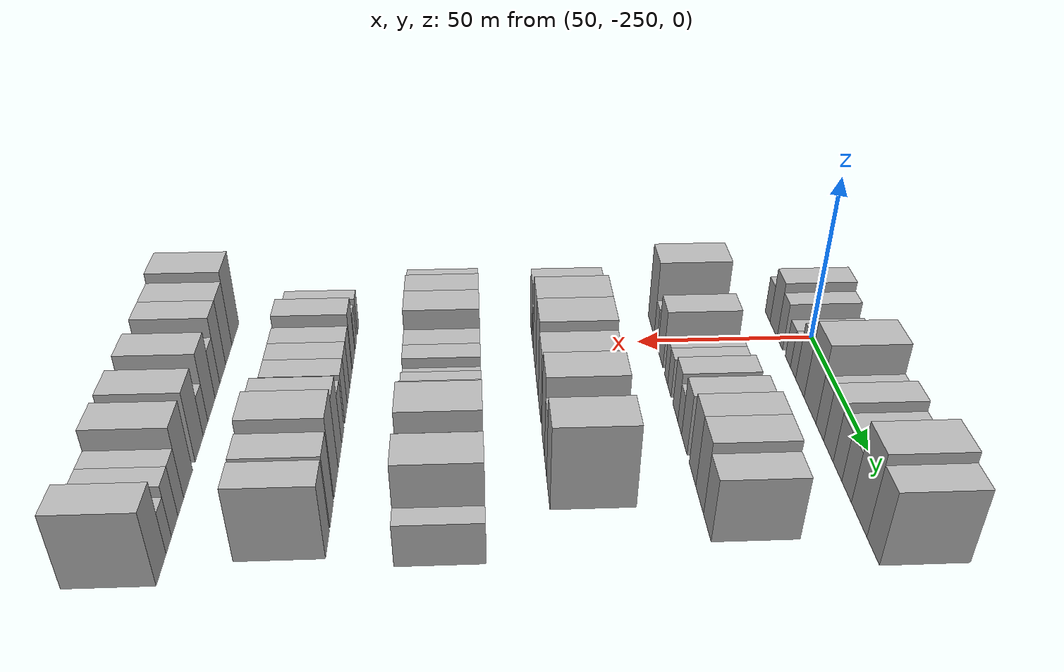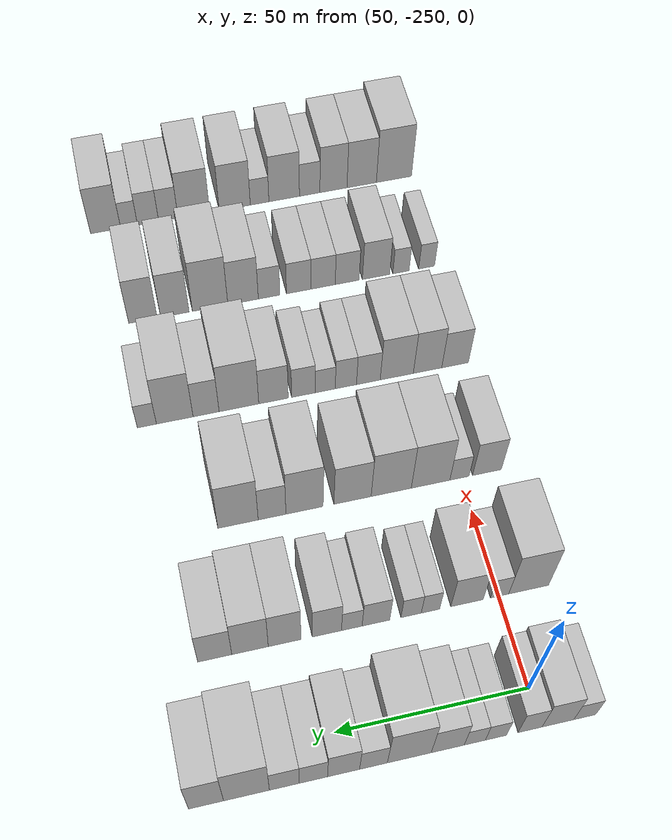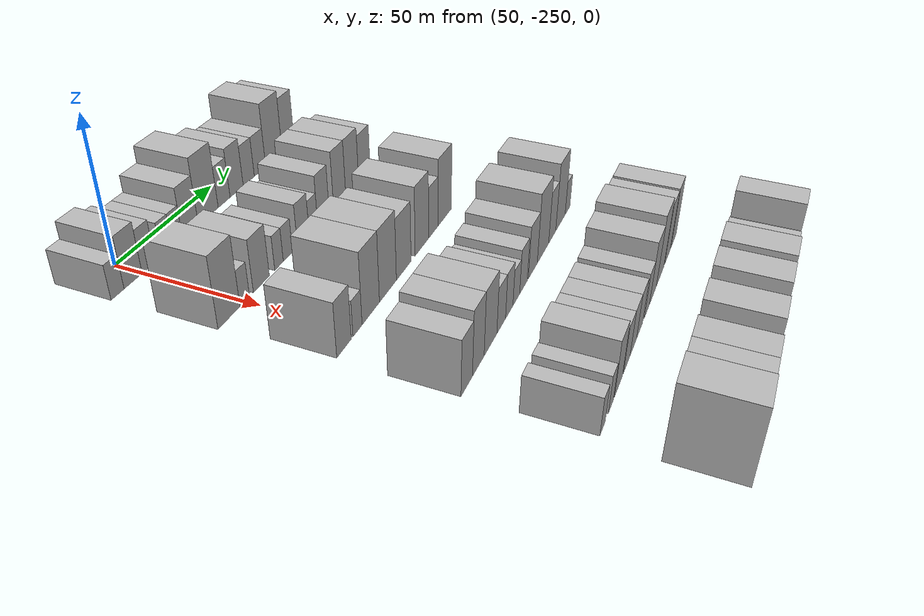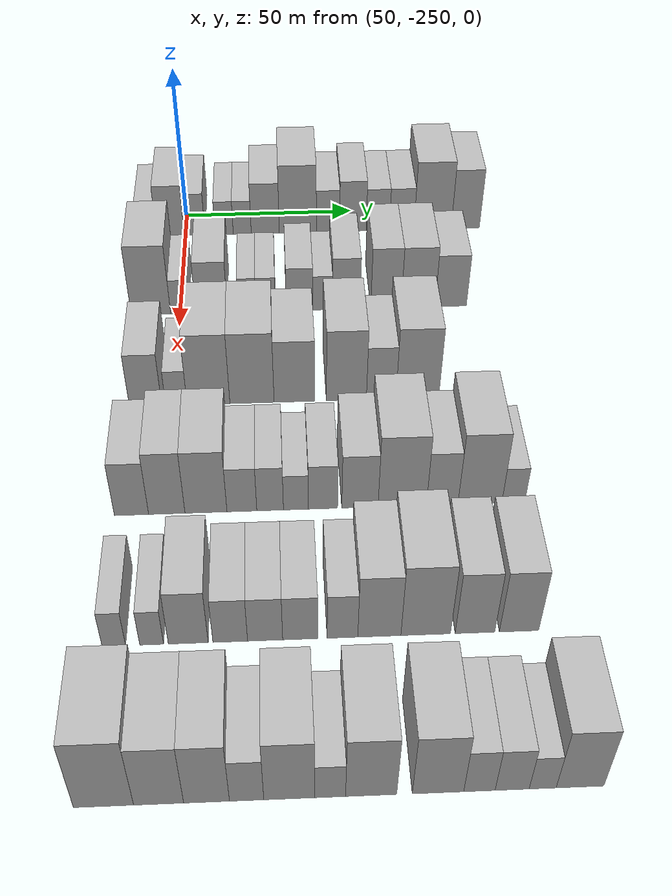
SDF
<sdf version="1.6">
 <world name="default">
  <model name="building_30">
   <static>1</static>
   <pose>50.0000 -261.3964 0 0.000000 0.000000 0.000000</pose>
   <link name="link">
    <pose>0 0 6.00 0 0 0</pose>
    <collision name="collision"><geometry><box><size>20.0000 5.7237 12.0000</size></box></geometry></collision>
    <visual name="visual">
     <cast_shadows>0</cast_shadows>
     <geometry><box><size>20.0000 5.7237 12.0000</size></box></geometry>
     <material>
      <script>
       <uri>model://HANNAS_wall/materials/scripts</uri>
       <uri>model://HANNAS_wall/materials/textures</uri>
       <name>vrc/HANNAS_wall</name>
      </script>
     </material>
    </visual>
   </link>
  </model>
  <model name="building_31">
   <static>1</static>
   <pose>50.0000 -254.4233 0 0.000000 0.000000 0.000000</pose>
   <link name="link">
    <pose>0 0 9.00 0 0 0</pose>
    <collision name="collision"><geometry><box><size>20.0000 8.2224 18.0000</size></box></geometry></collision>
    <visual name="visual">
     <cast_shadows>0</cast_shadows>
     <geometry><box><size>20.0000 8.2224 18.0000</size></box></geometry>
     <material>
      <script>
       <uri>model://HANNAS_wall/materials/scripts</uri>
       <uri>model://HANNAS_wall/materials/textures</uri>
       <name>vrc/HANNAS_wall</name>
      </script>
     </material>
    </visual>
   </link>
  </model>
  <model name="building_32">
   <static>1</static>
   <pose>50.0000 -247.2109 0 0.000000 0.000000 0.000000</pose>
   <link name="link">
    <pose>0 0 7.50 0 0 0</pose>
    <collision name="collision"><geometry><box><size>20.0000 6.2025 15.0000</size></box></geometry></collision>
    <visual name="visual">
     <cast_shadows>0</cast_shadows>
     <geometry><box><size>20.0000 6.2025 15.0000</size></box></geometry>
     <material>
      <script>
       <uri>model://HANNAS_wall/materials/scripts</uri>
       <uri>model://HANNAS_wall/materials/textures</uri>
       <name>vrc/HANNAS_wall</name>
      </script>
     </material>
    </visual>
   </link>
  </model>
  <model name="building_33">
   <static>1</static>
   <pose>50.0000 -238.4024 0 0.000000 0.000000 0.000000</pose>
   <link name="link">
    <pose>0 0 6.00 0 0 0</pose>
    <collision name="collision"><geometry><box><size>20.0000 5.4144 12.0000</size></box></geometry></collision>
    <visual name="visual">
     <cast_shadows>0</cast_shadows>
     <geometry><box><size>20.0000 5.4144 12.0000</size></box></geometry>
     <material>
      <script>
       <uri>model://HANNAS_wall/materials/scripts</uri>
       <uri>model://HANNAS_wall/materials/textures</uri>
       <name>vrc/HANNAS_wall</name>
      </script>
     </material>
    </visual>
   </link>
  </model>
  <model name="building_34">
   <static>1</static>
   <pose>50.0000 -233.0142 0 0.000000 0.000000 0.000000</pose>
   <link name="link">
    <pose>0 0 6.00 0 0 0</pose>
    <collision name="collision"><geometry><box><size>20.0000 5.3620 12.0000</size></box></geometry></collision>
    <visual name="visual">
     <cast_shadows>0</cast_shadows>
     <geometry><box><size>20.0000 5.3620 12.0000</size></box></geometry>
     <material>
      <script>
       <uri>model://HANNAS_wall/materials/scripts</uri>
       <uri>model://HANNAS_wall/materials/textures</uri>
       <name>vrc/HANNAS_wall</name>
      </script>
     </material>
    </visual>
   </link>
  </model>
  <model name="building_35">
   <static>1</static>
   <pose>50.0000 -226.1422 0 0.000000 0.000000 0.000000</pose>
   <link name="link">
    <pose>0 0 9.00 0 0 0</pose>
    <collision name="collision"><geometry><box><size>20.0000 8.3820 18.0000</size></box></geometry></collision>
    <visual name="visual">
     <cast_shadows>0</cast_shadows>
     <geometry><box><size>20.0000 8.3820 18.0000</size></box></geometry>
     <material>
      <script>
       <uri>model://HANNAS_wall/materials/scripts</uri>
       <uri>model://HANNAS_wall/materials/textures</uri>
       <name>vrc/HANNAS_wall</name>
      </script>
     </material>
    </visual>
   </link>
  </model>
  <model name="building_36">
   <static>1</static>
   <pose>50.0000 -216.4111 0 0.000000 0.000000 0.000000</pose>
   <link name="link">
    <pose>0 0 12.00 0 0 0</pose>
    <collision name="collision"><geometry><box><size>20.0000 11.0804 24.0000</size></box></geometry></collision>
    <visual name="visual">
     <cast_shadows>0</cast_shadows>
     <geometry><box><size>20.0000 11.0804 24.0000</size></box></geometry>
     <material>
      <script>
       <uri>model://HANNAS_wall/materials/scripts</uri>
       <uri>model://HANNAS_wall/materials/textures</uri>
       <name>vrc/HANNAS_wall</name>
      </script>
     </material>
    </visual>
   </link>
  </model>
  <model name="building_37">
   <static>1</static>
   <pose>50.0000 -207.3943 0 0.000000 0.000000 0.000000</pose>
   <link name="link">
    <pose>0 0 7.50 0 0 0</pose>
    <collision name="collision"><geometry><box><size>20.0000 6.9532 15.0000</size></box></geometry></collision>
    <visual name="visual">
     <cast_shadows>0</cast_shadows>
     <geometry><box><size>20.0000 6.9532 15.0000</size></box></geometry>
     <material>
      <script>
       <uri>model://HANNAS_wall/materials/scripts</uri>
       <uri>model://HANNAS_wall/materials/textures</uri>
       <name>vrc/HANNAS_wall</name>
      </script>
     </material>
    </visual>
   </link>
  </model>
  <model name="building_38">
   <static>1</static>
   <pose>50.0000 -199.9215 0 0.000000 0.000000 0.000000</pose>
   <link name="link">
    <pose>0 0 9.00 0 0 0</pose>
    <collision name="collision"><geometry><box><size>20.0000 7.9923 18.0000</size></box></geometry></collision>
    <visual name="visual">
     <cast_shadows>0</cast_shadows>
     <geometry><box><size>20.0000 7.9923 18.0000</size></box></geometry>
     <material>
      <script>
       <uri>model://HANNAS_wall/materials/scripts</uri>
       <uri>model://HANNAS_wall/materials/textures</uri>
       <name>vrc/HANNAS_wall</name>
      </script>
     </material>
    </visual>
   </link>
  </model>
  <model name="building_39">
   <static>1</static>
   <pose>50.0000 -192.4334 0 0.000000 0.000000 0.000000</pose>
   <link name="link">
    <pose>0 0 7.50 0 0 0</pose>
    <collision name="collision"><geometry><box><size>20.0000 6.9839 15.0000</size></box></geometry></collision>
    <visual name="visual">
     <cast_shadows>0</cast_shadows>
     <geometry><box><size>20.0000 6.9839 15.0000</size></box></geometry>
     <material>
      <script>
       <uri>model://HANNAS_wall/materials/scripts</uri>
       <uri>model://HANNAS_wall/materials/textures</uri>
       <name>vrc/HANNAS_wall</name>
      </script>
     </material>
    </visual>
   </link>
  </model>
  <model name="building_40">
   <static>1</static>
   <pose>50.0000 -185.2547 0 0.000000 0.000000 0.000000</pose>
   <link name="link">
    <pose>0 0 7.50 0 0 0</pose>
    <collision name="collision"><geometry><box><size>20.0000 7.3734 15.0000</size></box></geometry></collision>
    <visual name="visual">
     <cast_shadows>0</cast_shadows>
     <geometry><box><size>20.0000 7.3734 15.0000</size></box></geometry>
     <material>
      <script>
       <uri>model://HANNAS_wall/materials/scripts</uri>
       <uri>model://HANNAS_wall/materials/textures</uri>
       <name>vrc/HANNAS_wall</name>
      </script>
     </material>
    </visual>
   </link>
  </model>
  <model name="building_41">
   <static>1</static>
   <pose>50.0000 -175.9584 0 0.000000 0.000000 0.000000</pose>
   <link name="link">
    <pose>0 0 12.00 0 0 0</pose>
    <collision name="collision"><geometry><box><size>20.0000 11.2193 24.0000</size></box></geometry></collision>
    <visual name="visual">
     <cast_shadows>0</cast_shadows>
     <geometry><box><size>20.0000 11.2193 24.0000</size></box></geometry>
     <material>
      <script>
       <uri>model://HANNAS_wall/materials/scripts</uri>
       <uri>model://HANNAS_wall/materials/textures</uri>
       <name>vrc/HANNAS_wall</name>
      </script>
     </material>
    </visual>
   </link>
  </model>
  <model name="building_42">
   <static>1</static>
   <pose>50.0000 -166.0863 0 0.000000 0.000000 0.000000</pose>
   <link name="link">
    <pose>0 0 10.50 0 0 0</pose>
    <collision name="collision"><geometry><box><size>20.0000 8.5249 21.0000</size></box></geometry></collision>
    <visual name="visual">
     <cast_shadows>0</cast_shadows>
     <geometry><box><size>20.0000 8.5249 21.0000</size></box></geometry>
     <material>
      <script>
       <uri>model://HANNAS_wall/materials/scripts</uri>
       <uri>model://HANNAS_wall/materials/textures</uri>
       <name>vrc/HANNAS_wall</name>
      </script>
     </material>
    </visual>
   </link>
  </model>
  <model name="building_154">
   <static>1</static>
   <pose>85.0000 -258.0696 0 0.000000 0.000000 0.000000</pose>
   <link name="link">
    <pose>0 0 12.00 0 0 0</pose>
    <collision name="collision"><geometry><box><size>20.0000 10.8700 24.0000</size></box></geometry></collision>
    <visual name="visual">
     <cast_shadows>0</cast_shadows>
     <geometry><box><size>20.0000 10.8700 24.0000</size></box></geometry>
     <material>
      <script>
       <uri>model://HANNAS_wall/materials/scripts</uri>
       <uri>model://HANNAS_wall/materials/textures</uri>
       <name>vrc/HANNAS_wall</name>
      </script>
     </material>
    </visual>
   </link>
  </model>
  <model name="building_155">
   <static>1</static>
   <pose>85.0000 -250.1532 0 0.000000 0.000000 0.000000</pose>
   <link name="link">
    <pose>0 0 6.00 0 0 0</pose>
    <collision name="collision"><geometry><box><size>20.0000 4.9628 12.0000</size></box></geometry></collision>
    <visual name="visual">
     <cast_shadows>0</cast_shadows>
     <geometry><box><size>20.0000 4.9628 12.0000</size></box></geometry>
     <material>
      <script>
       <uri>model://HANNAS_wall/materials/scripts</uri>
       <uri>model://HANNAS_wall/materials/textures</uri>
       <name>vrc/HANNAS_wall</name>
      </script>
     </material>
    </visual>
   </link>
  </model>
  <model name="building_156">
   <static>1</static>
   <pose>85.0000 -241.3069 0 0.000000 0.000000 0.000000</pose>
   <link name="link">
    <pose>0 0 9.00 0 0 0</pose>
    <collision name="collision"><geometry><box><size>20.0000 8.7300 18.0000</size></box></geometry></collision>
    <visual name="visual">
     <cast_shadows>0</cast_shadows>
     <geometry><box><size>20.0000 8.7300 18.0000</size></box></geometry>
     <material>
      <script>
       <uri>model://HANNAS_wall/materials/scripts</uri>
       <uri>model://HANNAS_wall/materials/textures</uri>
       <name>vrc/HANNAS_wall</name>
      </script>
     </material>
    </visual>
   </link>
  </model>
  <model name="building_157">
   <static>1</static>
   <pose>85.0000 -231.4846 0 0.000000 0.000000 0.000000</pose>
   <link name="link">
    <pose>0 0 6.00 0 0 0</pose>
    <collision name="collision"><geometry><box><size>20.0000 4.9145 12.0000</size></box></geometry></collision>
    <visual name="visual">
     <cast_shadows>0</cast_shadows>
     <geometry><box><size>20.0000 4.9145 12.0000</size></box></geometry>
     <material>
      <script>
       <uri>model://HANNAS_wall/materials/scripts</uri>
       <uri>model://HANNAS_wall/materials/textures</uri>
       <name>vrc/HANNAS_wall</name>
      </script>
     </material>
    </visual>
   </link>
  </model>
  <model name="building_158">
   <static>1</static>
   <pose>85.0000 -226.3136 0 0.000000 0.000000 0.000000</pose>
   <link name="link">
    <pose>0 0 6.00 0 0 0</pose>
    <collision name="collision"><geometry><box><size>20.0000 5.4275 12.0000</size></box></geometry></collision>
    <visual name="visual">
     <cast_shadows>0</cast_shadows>
     <geometry><box><size>20.0000 5.4275 12.0000</size></box></geometry>
     <material>
      <script>
       <uri>model://HANNAS_wall/materials/scripts</uri>
       <uri>model://HANNAS_wall/materials/textures</uri>
       <name>vrc/HANNAS_wall</name>
      </script>
     </material>
    </visual>
   </link>
  </model>
  <model name="building_159">
   <static>1</static>
   <pose>85.0000 -216.9307 0 0.000000 0.000000 0.000000</pose>
   <link name="link">
    <pose>0 0 7.50 0 0 0</pose>
    <collision name="collision"><geometry><box><size>20.0000 7.3382 15.0000</size></box></geometry></collision>
    <visual name="visual">
     <cast_shadows>0</cast_shadows>
     <geometry><box><size>20.0000 7.3382 15.0000</size></box></geometry>
     <material>
      <script>
       <uri>model://HANNAS_wall/materials/scripts</uri>
       <uri>model://HANNAS_wall/materials/textures</uri>
       <name>vrc/HANNAS_wall</name>
      </script>
     </material>
    </visual>
   </link>
  </model>
  <model name="building_160">
   <static>1</static>
   <pose>85.0000 -210.5316 0 0.000000 0.000000 0.000000</pose>
   <link name="link">
    <pose>0 0 6.00 0 0 0</pose>
    <collision name="collision"><geometry><box><size>20.0000 5.4600 12.0000</size></box></geometry></collision>
    <visual name="visual">
     <cast_shadows>0</cast_shadows>
     <geometry><box><size>20.0000 5.4600 12.0000</size></box></geometry>
     <material>
      <script>
       <uri>model://HANNAS_wall/materials/scripts</uri>
       <uri>model://HANNAS_wall/materials/textures</uri>
       <name>vrc/HANNAS_wall</name>
      </script>
     </material>
    </visual>
   </link>
  </model>
  <model name="building_161">
   <static>1</static>
   <pose>85.0000 -203.9703 0 0.000000 0.000000 0.000000</pose>
   <link name="link">
    <pose>0 0 9.00 0 0 0</pose>
    <collision name="collision"><geometry><box><size>20.0000 7.6626 18.0000</size></box></geometry></collision>
    <visual name="visual">
     <cast_shadows>0</cast_shadows>
     <geometry><box><size>20.0000 7.6626 18.0000</size></box></geometry>
     <material>
      <script>
       <uri>model://HANNAS_wall/materials/scripts</uri>
       <uri>model://HANNAS_wall/materials/textures</uri>
       <name>vrc/HANNAS_wall</name>
      </script>
     </material>
    </visual>
   </link>
  </model>
  <model name="building_162">
   <static>1</static>
   <pose>85.0000 -192.8932 0 0.000000 0.000000 0.000000</pose>
   <link name="link">
    <pose>0 0 10.50 0 0 0</pose>
    <collision name="collision"><geometry><box><size>20.0000 8.4915 21.0000</size></box></geometry></collision>
    <visual name="visual">
     <cast_shadows>0</cast_shadows>
     <geometry><box><size>20.0000 8.4915 21.0000</size></box></geometry>
     <material>
      <script>
       <uri>model://HANNAS_wall/materials/scripts</uri>
       <uri>model://HANNAS_wall/materials/textures</uri>
       <name>vrc/HANNAS_wall</name>
      </script>
     </material>
    </visual>
   </link>
  </model>
  <model name="building_163">
   <static>1</static>
   <pose>85.0000 -183.9180 0 0.000000 0.000000 0.000000</pose>
   <link name="link">
    <pose>0 0 10.50 0 0 0</pose>
    <collision name="collision"><geometry><box><size>20.0000 9.4588 21.0000</size></box></geometry></collision>
    <visual name="visual">
     <cast_shadows>0</cast_shadows>
     <geometry><box><size>20.0000 9.4588 21.0000</size></box></geometry>
     <material>
      <script>
       <uri>model://HANNAS_wall/materials/scripts</uri>
       <uri>model://HANNAS_wall/materials/textures</uri>
       <name>vrc/HANNAS_wall</name>
      </script>
     </material>
    </visual>
   </link>
  </model>
  <model name="building_164">
   <static>1</static>
   <pose>85.0000 -174.8004 0 0.000000 0.000000 0.000000</pose>
   <link name="link">
    <pose>0 0 9.00 0 0 0</pose>
    <collision name="collision"><geometry><box><size>20.0000 8.7764 18.0000</size></box></geometry></collision>
    <visual name="visual">
     <cast_shadows>0</cast_shadows>
     <geometry><box><size>20.0000 8.7764 18.0000</size></box></geometry>
     <material>
      <script>
       <uri>model://HANNAS_wall/materials/scripts</uri>
       <uri>model://HANNAS_wall/materials/textures</uri>
       <name>vrc/HANNAS_wall</name>
      </script>
     </material>
    </visual>
   </link>
  </model>
  <model name="building_279">
   <static>1</static>
   <pose>120.0000 -257.2918 0 0.000000 0.000000 0.000000</pose>
   <link name="link">
    <pose>0 0 9.00 0 0 0</pose>
    <collision name="collision"><geometry><box><size>20.0000 8.2279 18.0000</size></box></geometry></collision>
    <visual name="visual">
     <cast_shadows>0</cast_shadows>
     <geometry><box><size>20.0000 8.2279 18.0000</size></box></geometry>
     <material>
      <script>
       <uri>model://HANNAS_wall/materials/scripts</uri>
       <uri>model://HANNAS_wall/materials/textures</uri>
       <name>vrc/HANNAS_wall</name>
      </script>
     </material>
    </visual>
   </link>
  </model>
  <model name="building_280">
   <static>1</static>
   <pose>120.0000 -249.4496 0 0.000000 0.000000 0.000000</pose>
   <link name="link">
    <pose>0 0 6.00 0 0 0</pose>
    <collision name="collision"><geometry><box><size>20.0000 5.4565 12.0000</size></box></geometry></collision>
    <visual name="visual">
     <cast_shadows>0</cast_shadows>
     <geometry><box><size>20.0000 5.4565 12.0000</size></box></geometry>
     <material>
      <script>
       <uri>model://HANNAS_wall/materials/scripts</uri>
       <uri>model://HANNAS_wall/materials/textures</uri>
       <name>vrc/HANNAS_wall</name>
      </script>
     </material>
    </visual>
   </link>
  </model>
  <model name="building_281">
   <static>1</static>
   <pose>120.0000 -241.2702 0 0.000000 0.000000 0.000000</pose>
   <link name="link">
    <pose>0 0 12.00 0 0 0</pose>
    <collision name="collision"><geometry><box><size>20.0000 10.9023 24.0000</size></box></geometry></collision>
    <visual name="visual">
     <cast_shadows>0</cast_shadows>
     <geometry><box><size>20.0000 10.9023 24.0000</size></box></geometry>
     <material>
      <script>
       <uri>model://HANNAS_wall/materials/scripts</uri>
       <uri>model://HANNAS_wall/materials/textures</uri>
       <name>vrc/HANNAS_wall</name>
      </script>
     </material>
    </visual>
   </link>
  </model>
  <model name="building_282">
   <static>1</static>
   <pose>120.0000 -230.1667 0 0.000000 0.000000 0.000000</pose>
   <link name="link">
    <pose>0 0 12.00 0 0 0</pose>
    <collision name="collision"><geometry><box><size>20.0000 11.3048 24.0000</size></box></geometry></collision>
    <visual name="visual">
     <cast_shadows>0</cast_shadows>
     <geometry><box><size>20.0000 11.3048 24.0000</size></box></geometry>
     <material>
      <script>
       <uri>model://HANNAS_wall/materials/scripts</uri>
       <uri>model://HANNAS_wall/materials/textures</uri>
       <name>vrc/HANNAS_wall</name>
      </script>
     </material>
    </visual>
   </link>
  </model>
  <model name="building_283">
   <static>1</static>
   <pose>120.0000 -219.3203 0 0.000000 0.000000 0.000000</pose>
   <link name="link">
    <pose>0 0 10.50 0 0 0</pose>
    <collision name="collision"><geometry><box><size>20.0000 10.3879 21.0000</size></box></geometry></collision>
    <visual name="visual">
     <cast_shadows>0</cast_shadows>
     <geometry><box><size>20.0000 10.3879 21.0000</size></box></geometry>
     <material>
      <script>
       <uri>model://HANNAS_wall/materials/scripts</uri>
       <uri>model://HANNAS_wall/materials/textures</uri>
       <name>vrc/HANNAS_wall</name>
      </script>
     </material>
    </visual>
   </link>
  </model>
  <model name="building_284">
   <static>1</static>
   <pose>120.0000 -205.9946 0 0.000000 0.000000 0.000000</pose>
   <link name="link">
    <pose>0 0 12.00 0 0 0</pose>
    <collision name="collision"><geometry><box><size>20.0000 10.2636 24.0000</size></box></geometry></collision>
    <visual name="visual">
     <cast_shadows>0</cast_shadows>
     <geometry><box><size>20.0000 10.2636 24.0000</size></box></geometry>
     <material>
      <script>
       <uri>model://HANNAS_wall/materials/scripts</uri>
       <uri>model://HANNAS_wall/materials/textures</uri>
       <name>vrc/HANNAS_wall</name>
      </script>
     </material>
    </visual>
   </link>
  </model>
  <model name="building_285">
   <static>1</static>
   <pose>120.0000 -197.0527 0 0.000000 0.000000 0.000000</pose>
   <link name="link">
    <pose>0 0 9.00 0 0 0</pose>
    <collision name="collision"><geometry><box><size>20.0000 7.6201 18.0000</size></box></geometry></collision>
    <visual name="visual">
     <cast_shadows>0</cast_shadows>
     <geometry><box><size>20.0000 7.6201 18.0000</size></box></geometry>
     <material>
      <script>
       <uri>model://HANNAS_wall/materials/scripts</uri>
       <uri>model://HANNAS_wall/materials/textures</uri>
       <name>vrc/HANNAS_wall</name>
      </script>
     </material>
    </visual>
   </link>
  </model>
  <model name="building_286">
   <static>1</static>
   <pose>120.0000 -187.7333 0 0.000000 0.000000 0.000000</pose>
   <link name="link">
    <pose>0 0 12.00 0 0 0</pose>
    <collision name="collision"><geometry><box><size>20.0000 11.0187 24.0000</size></box></geometry></collision>
    <visual name="visual">
     <cast_shadows>0</cast_shadows>
     <geometry><box><size>20.0000 11.0187 24.0000</size></box></geometry>
     <material>
      <script>
       <uri>model://HANNAS_wall/materials/scripts</uri>
       <uri>model://HANNAS_wall/materials/textures</uri>
       <name>vrc/HANNAS_wall</name>
      </script>
     </material>
    </visual>
   </link>
  </model>
  <model name="building_398">
   <static>1</static>
   <pose>155.0000 -258.3052 0 0.000000 0.000000 0.000000</pose>
   <link name="link">
    <pose>0 0 9.00 0 0 0</pose>
    <collision name="collision"><geometry><box><size>20.0000 7.9588 18.0000</size></box></geometry></collision>
    <visual name="visual">
     <cast_shadows>0</cast_shadows>
     <geometry><box><size>20.0000 7.9588 18.0000</size></box></geometry>
     <material>
      <script>
       <uri>model://HANNAS_wall/materials/scripts</uri>
       <uri>model://HANNAS_wall/materials/textures</uri>
       <name>vrc/HANNAS_wall</name>
      </script>
     </material>
    </visual>
   </link>
  </model>
  <model name="building_399">
   <static>1</static>
   <pose>155.0000 -250.0890 0 0.000000 0.000000 0.000000</pose>
   <link name="link">
    <pose>0 0 10.50 0 0 0</pose>
    <collision name="collision"><geometry><box><size>20.0000 8.4737 21.0000</size></box></geometry></collision>
    <visual name="visual">
     <cast_shadows>0</cast_shadows>
     <geometry><box><size>20.0000 8.4737 21.0000</size></box></geometry>
     <material>
      <script>
       <uri>model://HANNAS_wall/materials/scripts</uri>
       <uri>model://HANNAS_wall/materials/textures</uri>
       <name>vrc/HANNAS_wall</name>
      </script>
     </material>
    </visual>
   </link>
  </model>
  <model name="building_400">
   <static>1</static>
   <pose>155.0000 -240.9538 0 0.000000 0.000000 0.000000</pose>
   <link name="link">
    <pose>0 0 10.50 0 0 0</pose>
    <collision name="collision"><geometry><box><size>20.0000 9.7966 21.0000</size></box></geometry></collision>
    <visual name="visual">
     <cast_shadows>0</cast_shadows>
     <geometry><box><size>20.0000 9.7966 21.0000</size></box></geometry>
     <material>
      <script>
       <uri>model://HANNAS_wall/materials/scripts</uri>
       <uri>model://HANNAS_wall/materials/textures</uri>
       <name>vrc/HANNAS_wall</name>
      </script>
     </material>
    </visual>
   </link>
  </model>
  <model name="building_401">
   <static>1</static>
   <pose>155.0000 -232.5621 0 0.000000 0.000000 0.000000</pose>
   <link name="link">
    <pose>0 0 7.50 0 0 0</pose>
    <collision name="collision"><geometry><box><size>20.0000 6.9869 15.0000</size></box></geometry></collision>
    <visual name="visual">
     <cast_shadows>0</cast_shadows>
     <geometry><box><size>20.0000 6.9869 15.0000</size></box></geometry>
     <material>
      <script>
       <uri>model://HANNAS_wall/materials/scripts</uri>
       <uri>model://HANNAS_wall/materials/textures</uri>
       <name>vrc/HANNAS_wall</name>
      </script>
     </material>
    </visual>
   </link>
  </model>
  <model name="building_402">
   <static>1</static>
   <pose>155.0000 -225.9506 0 0.000000 0.000000 0.000000</pose>
   <link name="link">
    <pose>0 0 7.50 0 0 0</pose>
    <collision name="collision"><geometry><box><size>20.0000 6.2360 15.0000</size></box></geometry></collision>
    <visual name="visual">
     <cast_shadows>0</cast_shadows>
     <geometry><box><size>20.0000 6.2360 15.0000</size></box></geometry>
     <material>
      <script>
       <uri>model://HANNAS_wall/materials/scripts</uri>
       <uri>model://HANNAS_wall/materials/textures</uri>
       <name>vrc/HANNAS_wall</name>
      </script>
     </material>
    </visual>
   </link>
  </model>
  <model name="building_403">
   <static>1</static>
   <pose>155.0000 -219.9020 0 0.000000 0.000000 0.000000</pose>
   <link name="link">
    <pose>0 0 6.00 0 0 0</pose>
    <collision name="collision"><geometry><box><size>20.0000 5.8613 12.0000</size></box></geometry></collision>
    <visual name="visual">
     <cast_shadows>0</cast_shadows>
     <geometry><box><size>20.0000 5.8613 12.0000</size></box></geometry>
     <material>
      <script>
       <uri>model://HANNAS_wall/materials/scripts</uri>
       <uri>model://HANNAS_wall/materials/textures</uri>
       <name>vrc/HANNAS_wall</name>
      </script>
     </material>
    </visual>
   </link>
  </model>
  <model name="building_404">
   <static>1</static>
   <pose>155.0000 -213.5526 0 0.000000 0.000000 0.000000</pose>
   <link name="link">
    <pose>0 0 7.50 0 0 0</pose>
    <collision name="collision"><geometry><box><size>20.0000 6.8376 15.0000</size></box></geometry></collision>
    <visual name="visual">
     <cast_shadows>0</cast_shadows>
     <geometry><box><size>20.0000 6.8376 15.0000</size></box></geometry>
     <material>
      <script>
       <uri>model://HANNAS_wall/materials/scripts</uri>
       <uri>model://HANNAS_wall/materials/textures</uri>
       <name>vrc/HANNAS_wall</name>
      </script>
     </material>
    </visual>
   </link>
  </model>
  <model name="building_405">
   <static>1</static>
   <pose>155.0000 -204.8724 0 0.000000 0.000000 0.000000</pose>
   <link name="link">
    <pose>0 0 9.00 0 0 0</pose>
    <collision name="collision"><geometry><box><size>20.0000 8.5228 18.0000</size></box></geometry></collision>
    <visual name="visual">
     <cast_shadows>0</cast_shadows>
     <geometry><box><size>20.0000 8.5228 18.0000</size></box></geometry>
     <material>
      <script>
       <uri>model://HANNAS_wall/materials/scripts</uri>
       <uri>model://HANNAS_wall/materials/textures</uri>
       <name>vrc/HANNAS_wall</name>
      </script>
     </material>
    </visual>
   </link>
  </model>
  <model name="building_406">
   <static>1</static>
   <pose>155.0000 -194.9114 0 0.000000 0.000000 0.000000</pose>
   <link name="link">
    <pose>0 0 12.00 0 0 0</pose>
    <collision name="collision"><geometry><box><size>20.0000 11.3991 24.0000</size></box></geometry></collision>
    <visual name="visual">
     <cast_shadows>0</cast_shadows>
     <geometry><box><size>20.0000 11.3991 24.0000</size></box></geometry>
     <material>
      <script>
       <uri>model://HANNAS_wall/materials/scripts</uri>
       <uri>model://HANNAS_wall/materials/textures</uri>
       <name>vrc/HANNAS_wall</name>
      </script>
     </material>
    </visual>
   </link>
  </model>
  <model name="building_407">
   <static>1</static>
   <pose>155.0000 -185.4858 0 0.000000 0.000000 0.000000</pose>
   <link name="link">
    <pose>0 0 9.00 0 0 0</pose>
    <collision name="collision"><geometry><box><size>20.0000 7.4521 18.0000</size></box></geometry></collision>
    <visual name="visual">
     <cast_shadows>0</cast_shadows>
     <geometry><box><size>20.0000 7.4521 18.0000</size></box></geometry>
     <material>
      <script>
       <uri>model://HANNAS_wall/materials/scripts</uri>
       <uri>model://HANNAS_wall/materials/textures</uri>
       <name>vrc/HANNAS_wall</name>
      </script>
     </material>
    </visual>
   </link>
  </model>
  <model name="building_408">
   <static>1</static>
   <pose>155.0000 -176.5495 0 0.000000 0.000000 0.000000</pose>
   <link name="link">
    <pose>0 0 12.00 0 0 0</pose>
    <collision name="collision"><geometry><box><size>20.0000 10.4205 24.0000</size></box></geometry></collision>
    <visual name="visual">
     <cast_shadows>0</cast_shadows>
     <geometry><box><size>20.0000 10.4205 24.0000</size></box></geometry>
     <material>
      <script>
       <uri>model://HANNAS_wall/materials/scripts</uri>
       <uri>model://HANNAS_wall/materials/textures</uri>
       <name>vrc/HANNAS_wall</name>
      </script>
     </material>
    </visual>
   </link>
  </model>
  <model name="building_409">
   <static>1</static>
   <pose>155.0000 -168.6185 0 0.000000 0.000000 0.000000</pose>
   <link name="link">
    <pose>0 0 6.00 0 0 0</pose>
    <collision name="collision"><geometry><box><size>20.0000 5.4416 12.0000</size></box></geometry></collision>
    <visual name="visual">
     <cast_shadows>0</cast_shadows>
     <geometry><box><size>20.0000 5.4416 12.0000</size></box></geometry>
     <material>
      <script>
       <uri>model://HANNAS_wall/materials/scripts</uri>
       <uri>model://HANNAS_wall/materials/textures</uri>
       <name>vrc/HANNAS_wall</name>
      </script>
     </material>
    </visual>
   </link>
  </model>
  <model name="building_521">
   <static>1</static>
   <pose>190.0000 -259.4842 0 0.000000 0.000000 0.000000</pose>
   <link name="link">
    <pose>0 0 6.00 0 0 0</pose>
    <collision name="collision"><geometry><box><size>20.0000 4.9604 12.0000</size></box></geometry></collision>
    <visual name="visual">
     <cast_shadows>0</cast_shadows>
     <geometry><box><size>20.0000 4.9604 12.0000</size></box></geometry>
     <material>
      <script>
       <uri>model://HANNAS_wall/materials/scripts</uri>
       <uri>model://HANNAS_wall/materials/textures</uri>
       <name>vrc/HANNAS_wall</name>
      </script>
     </material>
    </visual>
   </link>
  </model>
  <model name="building_522">
   <static>1</static>
   <pose>190.0000 -251.4863 0 0.000000 0.000000 0.000000</pose>
   <link name="link">
    <pose>0 0 6.00 0 0 0</pose>
    <collision name="collision"><geometry><box><size>20.0000 5.0355 12.0000</size></box></geometry></collision>
    <visual name="visual">
     <cast_shadows>0</cast_shadows>
     <geometry><box><size>20.0000 5.0355 12.0000</size></box></geometry>
     <material>
      <script>
       <uri>model://HANNAS_wall/materials/scripts</uri>
       <uri>model://HANNAS_wall/materials/textures</uri>
       <name>vrc/HANNAS_wall</name>
      </script>
     </material>
    </visual>
   </link>
  </model>
  <model name="building_523">
   <static>1</static>
   <pose>190.0000 -243.7464 0 0.000000 0.000000 0.000000</pose>
   <link name="link">
    <pose>0 0 9.00 0 0 0</pose>
    <collision name="collision"><geometry><box><size>20.0000 8.4443 18.0000</size></box></geometry></collision>
    <visual name="visual">
     <cast_shadows>0</cast_shadows>
     <geometry><box><size>20.0000 8.4443 18.0000</size></box></geometry>
     <material>
      <script>
       <uri>model://HANNAS_wall/materials/scripts</uri>
       <uri>model://HANNAS_wall/materials/textures</uri>
       <name>vrc/HANNAS_wall</name>
      </script>
     </material>
    </visual>
   </link>
  </model>
  <model name="building_524">
   <static>1</static>
   <pose>190.0000 -234.8457 0 0.000000 0.000000 0.000000</pose>
   <link name="link">
    <pose>0 0 7.50 0 0 0</pose>
    <collision name="collision"><geometry><box><size>20.0000 7.3573 15.0000</size></box></geometry></collision>
    <visual name="visual">
     <cast_shadows>0</cast_shadows>
     <geometry><box><size>20.0000 7.3573 15.0000</size></box></geometry>
     <material>
      <script>
       <uri>model://HANNAS_wall/materials/scripts</uri>
       <uri>model://HANNAS_wall/materials/textures</uri>
       <name>vrc/HANNAS_wall</name>
      </script>
     </material>
    </visual>
   </link>
  </model>
  <model name="building_525">
   <static>1</static>
   <pose>190.0000 -227.4371 0 0.000000 0.000000 0.000000</pose>
   <link name="link">
    <pose>0 0 7.50 0 0 0</pose>
    <collision name="collision"><geometry><box><size>20.0000 7.4598 15.0000</size></box></geometry></collision>
    <visual name="visual">
     <cast_shadows>0</cast_shadows>
     <geometry><box><size>20.0000 7.4598 15.0000</size></box></geometry>
     <material>
      <script>
       <uri>model://HANNAS_wall/materials/scripts</uri>
       <uri>model://HANNAS_wall/materials/textures</uri>
       <name>vrc/HANNAS_wall</name>
      </script>
     </material>
    </visual>
   </link>
  </model>
  <model name="building_526">
   <static>1</static>
   <pose>190.0000 -219.9724 0 0.000000 0.000000 0.000000</pose>
   <link name="link">
    <pose>0 0 7.50 0 0 0</pose>
    <collision name="collision"><geometry><box><size>20.0000 7.4695 15.0000</size></box></geometry></collision>
    <visual name="visual">
     <cast_shadows>0</cast_shadows>
     <geometry><box><size>20.0000 7.4695 15.0000</size></box></geometry>
     <material>
      <script>
       <uri>model://HANNAS_wall/materials/scripts</uri>
       <uri>model://HANNAS_wall/materials/textures</uri>
       <name>vrc/HANNAS_wall</name>
      </script>
     </material>
    </visual>
   </link>
  </model>
  <model name="building_527">
   <static>1</static>
   <pose>190.0000 -210.9669 0 0.000000 0.000000 0.000000</pose>
   <link name="link">
    <pose>0 0 7.50 0 0 0</pose>
    <collision name="collision"><geometry><box><size>20.0000 6.5417 15.0000</size></box></geometry></collision>
    <visual name="visual">
     <cast_shadows>0</cast_shadows>
     <geometry><box><size>20.0000 6.5417 15.0000</size></box></geometry>
     <material>
      <script>
       <uri>model://HANNAS_wall/materials/scripts</uri>
       <uri>model://HANNAS_wall/materials/textures</uri>
       <name>vrc/HANNAS_wall</name>
      </script>
     </material>
    </visual>
   </link>
  </model>
  <model name="building_528">
   <static>1</static>
   <pose>190.0000 -203.0842 0 0.000000 0.000000 0.000000</pose>
   <link name="link">
    <pose>0 0 10.50 0 0 0</pose>
    <collision name="collision"><geometry><box><size>20.0000 9.2237 21.0000</size></box></geometry></collision>
    <visual name="visual">
     <cast_shadows>0</cast_shadows>
     <geometry><box><size>20.0000 9.2237 21.0000</size></box></geometry>
     <material>
      <script>
       <uri>model://HANNAS_wall/materials/scripts</uri>
       <uri>model://HANNAS_wall/materials/textures</uri>
       <name>vrc/HANNAS_wall</name>
      </script>
     </material>
    </visual>
   </link>
  </model>
  <model name="building_529">
   <static>1</static>
   <pose>190.0000 -193.1553 0 0.000000 0.000000 0.000000</pose>
   <link name="link">
    <pose>0 0 12.00 0 0 0</pose>
    <collision name="collision"><geometry><box><size>20.0000 10.6341 24.0000</size></box></geometry></collision>
    <visual name="visual">
     <cast_shadows>0</cast_shadows>
     <geometry><box><size>20.0000 10.6341 24.0000</size></box></geometry>
     <material>
      <script>
       <uri>model://HANNAS_wall/materials/scripts</uri>
       <uri>model://HANNAS_wall/materials/textures</uri>
       <name>vrc/HANNAS_wall</name>
      </script>
     </material>
    </visual>
   </link>
  </model>
  <model name="building_530">
   <static>1</static>
   <pose>190.0000 -182.5807 0 0.000000 0.000000 0.000000</pose>
   <link name="link">
    <pose>0 0 10.50 0 0 0</pose>
    <collision name="collision"><geometry><box><size>20.0000 8.5151 21.0000</size></box></geometry></collision>
    <visual name="visual">
     <cast_shadows>0</cast_shadows>
     <geometry><box><size>20.0000 8.5151 21.0000</size></box></geometry>
     <material>
      <script>
       <uri>model://HANNAS_wall/materials/scripts</uri>
       <uri>model://HANNAS_wall/materials/textures</uri>
       <name>vrc/HANNAS_wall</name>
      </script>
     </material>
    </visual>
   </link>
  </model>
  <model name="building_531">
   <static>1</static>
   <pose>190.0000 -173.0953 0 0.000000 0.000000 0.000000</pose>
   <link name="link">
    <pose>0 0 10.50 0 0 0</pose>
    <collision name="collision"><geometry><box><size>20.0000 8.4557 21.0000</size></box></geometry></collision>
    <visual name="visual">
     <cast_shadows>0</cast_shadows>
     <geometry><box><size>20.0000 8.4557 21.0000</size></box></geometry>
     <material>
      <script>
       <uri>model://HANNAS_wall/materials/scripts</uri>
       <uri>model://HANNAS_wall/materials/textures</uri>
       <name>vrc/HANNAS_wall</name>
      </script>
     </material>
    </visual>
   </link>
  </model>
  <model name="building_656">
   <static>1</static>
   <pose>225.0000 -258.4935 0 0.000000 0.000000 0.000000</pose>
   <link name="link">
    <pose>0 0 12.00 0 0 0</pose>
    <collision name="collision"><geometry><box><size>20.0000 11.4151 24.0000</size></box></geometry></collision>
    <visual name="visual">
     <cast_shadows>0</cast_shadows>
     <geometry><box><size>20.0000 11.4151 24.0000</size></box></geometry>
     <material>
      <script>
       <uri>model://HANNAS_wall/materials/scripts</uri>
       <uri>model://HANNAS_wall/materials/textures</uri>
       <name>vrc/HANNAS_wall</name>
      </script>
     </material>
    </visual>
   </link>
  </model>
  <model name="building_657">
   <static>1</static>
   <pose>225.0000 -248.0324 0 0.000000 0.000000 0.000000</pose>
   <link name="link">
    <pose>0 0 10.50 0 0 0</pose>
    <collision name="collision"><geometry><box><size>20.0000 9.5070 21.0000</size></box></geometry></collision>
    <visual name="visual">
     <cast_shadows>0</cast_shadows>
     <geometry><box><size>20.0000 9.5070 21.0000</size></box></geometry>
     <material>
      <script>
       <uri>model://HANNAS_wall/materials/scripts</uri>
       <uri>model://HANNAS_wall/materials/textures</uri>
       <name>vrc/HANNAS_wall</name>
      </script>
     </material>
    </visual>
   </link>
  </model>
  <model name="building_658">
   <static>1</static>
   <pose>225.0000 -238.9188 0 0.000000 0.000000 0.000000</pose>
   <link name="link">
    <pose>0 0 10.50 0 0 0</pose>
    <collision name="collision"><geometry><box><size>20.0000 8.7202 21.0000</size></box></geometry></collision>
    <visual name="visual">
     <cast_shadows>0</cast_shadows>
     <geometry><box><size>20.0000 8.7202 21.0000</size></box></geometry>
     <material>
      <script>
       <uri>model://HANNAS_wall/materials/scripts</uri>
       <uri>model://HANNAS_wall/materials/textures</uri>
       <name>vrc/HANNAS_wall</name>
      </script>
     </material>
    </visual>
   </link>
  </model>
  <model name="building_659">
   <static>1</static>
   <pose>225.0000 -231.2817 0 0.000000 0.000000 0.000000</pose>
   <link name="link">
    <pose>0 0 7.50 0 0 0</pose>
    <collision name="collision"><geometry><box><size>20.0000 6.5540 15.0000</size></box></geometry></collision>
    <visual name="visual">
     <cast_shadows>0</cast_shadows>
     <geometry><box><size>20.0000 6.5540 15.0000</size></box></geometry>
     <material>
      <script>
       <uri>model://HANNAS_wall/materials/scripts</uri>
       <uri>model://HANNAS_wall/materials/textures</uri>
       <name>vrc/HANNAS_wall</name>
      </script>
     </material>
    </visual>
   </link>
  </model>
  <model name="building_660">
   <static>1</static>
   <pose>225.0000 -223.1368 0 0.000000 0.000000 0.000000</pose>
   <link name="link">
    <pose>0 0 10.50 0 0 0</pose>
    <collision name="collision"><geometry><box><size>20.0000 9.7358 21.0000</size></box></geometry></collision>
    <visual name="visual">
     <cast_shadows>0</cast_shadows>
     <geometry><box><size>20.0000 9.7358 21.0000</size></box></geometry>
     <material>
      <script>
       <uri>model://HANNAS_wall/materials/scripts</uri>
       <uri>model://HANNAS_wall/materials/textures</uri>
       <name>vrc/HANNAS_wall</name>
      </script>
     </material>
    </visual>
   </link>
  </model>
  <model name="building_661">
   <static>1</static>
   <pose>225.0000 -215.3137 0 0.000000 0.000000 0.000000</pose>
   <link name="link">
    <pose>0 0 6.00 0 0 0</pose>
    <collision name="collision"><geometry><box><size>20.0000 5.9104 12.0000</size></box></geometry></collision>
    <visual name="visual">
     <cast_shadows>0</cast_shadows>
     <geometry><box><size>20.0000 5.9104 12.0000</size></box></geometry>
     <material>
      <script>
       <uri>model://HANNAS_wall/materials/scripts</uri>
       <uri>model://HANNAS_wall/materials/textures</uri>
       <name>vrc/HANNAS_wall</name>
      </script>
     </material>
    </visual>
   </link>
  </model>
  <model name="building_662">
   <static>1</static>
   <pose>225.0000 -207.4429 0 0.000000 0.000000 0.000000</pose>
   <link name="link">
    <pose>0 0 10.50 0 0 0</pose>
    <collision name="collision"><geometry><box><size>20.0000 9.8313 21.0000</size></box></geometry></collision>
    <visual name="visual">
     <cast_shadows>0</cast_shadows>
     <geometry><box><size>20.0000 9.8313 21.0000</size></box></geometry>
     <material>
      <script>
       <uri>model://HANNAS_wall/materials/scripts</uri>
       <uri>model://HANNAS_wall/materials/textures</uri>
       <name>vrc/HANNAS_wall</name>
      </script>
     </material>
    </visual>
   </link>
  </model>
  <model name="building_663">
   <static>1</static>
   <pose>225.0000 -194.5699 0 0.000000 0.000000 0.000000</pose>
   <link name="link">
    <pose>0 0 10.50 0 0 0</pose>
    <collision name="collision"><geometry><box><size>20.0000 9.9147 21.0000</size></box></geometry></collision>
    <visual name="visual">
     <cast_shadows>0</cast_shadows>
     <geometry><box><size>20.0000 9.9147 21.0000</size></box></geometry>
     <material>
      <script>
       <uri>model://HANNAS_wall/materials/scripts</uri>
       <uri>model://HANNAS_wall/materials/textures</uri>
       <name>vrc/HANNAS_wall</name>
      </script>
     </material>
    </visual>
   </link>
  </model>
  <model name="building_664">
   <static>1</static>
   <pose>225.0000 -186.5803 0 0.000000 0.000000 0.000000</pose>
   <link name="link">
    <pose>0 0 7.50 0 0 0</pose>
    <collision name="collision"><geometry><box><size>20.0000 6.0646 15.0000</size></box></geometry></collision>
    <visual name="visual">
     <cast_shadows>0</cast_shadows>
     <geometry><box><size>20.0000 6.0646 15.0000</size></box></geometry>
     <material>
      <script>
       <uri>model://HANNAS_wall/materials/scripts</uri>
       <uri>model://HANNAS_wall/materials/textures</uri>
       <name>vrc/HANNAS_wall</name>
      </script>
     </material>
    </visual>
   </link>
  </model>
  <model name="building_665">
   <static>1</static>
   <pose>225.0000 -180.2552 0 0.000000 0.000000 0.000000</pose>
   <link name="link">
    <pose>0 0 7.50 0 0 0</pose>
    <collision name="collision"><geometry><box><size>20.0000 6.5855 15.0000</size></box></geometry></collision>
    <visual name="visual">
     <cast_shadows>0</cast_shadows>
     <geometry><box><size>20.0000 6.5855 15.0000</size></box></geometry>
     <material>
      <script>
       <uri>model://HANNAS_wall/materials/scripts</uri>
       <uri>model://HANNAS_wall/materials/textures</uri>
       <name>vrc/HANNAS_wall</name>
      </script>
     </material>
    </visual>
   </link>
  </model>
  <model name="building_666">
   <static>1</static>
   <pose>225.0000 -174.3447 0 0.000000 0.000000 0.000000</pose>
   <link name="link">
    <pose>0 0 6.00 0 0 0</pose>
    <collision name="collision"><geometry><box><size>20.0000 5.2355 12.0000</size></box></geometry></collision>
    <visual name="visual">
     <cast_shadows>0</cast_shadows>
     <geometry><box><size>20.0000 5.2355 12.0000</size></box></geometry>
     <material>
      <script>
       <uri>model://HANNAS_wall/materials/scripts</uri>
       <uri>model://HANNAS_wall/materials/textures</uri>
       <name>vrc/HANNAS_wall</name>
      </script>
     </material>
    </visual>
   </link>
  </model>
  <model name="building_667">
   <static>1</static>
   <pose>225.0000 -167.0886 0 0.000000 0.000000 0.000000</pose>
   <link name="link">
    <pose>0 0 10.50 0 0 0</pose>
    <collision name="collision"><geometry><box><size>20.0000 9.2767 21.0000</size></box></geometry></collision>
    <visual name="visual">
     <cast_shadows>0</cast_shadows>
     <geometry><box><size>20.0000 9.2767 21.0000</size></box></geometry>
     <material>
      <script>
       <uri>model://HANNAS_wall/materials/scripts</uri>
       <uri>model://HANNAS_wall/materials/textures</uri>
       <name>vrc/HANNAS_wall</name>
      </script>
     </material>
    </visual>
   </link>
  </model>
 </world>
</sdf>
